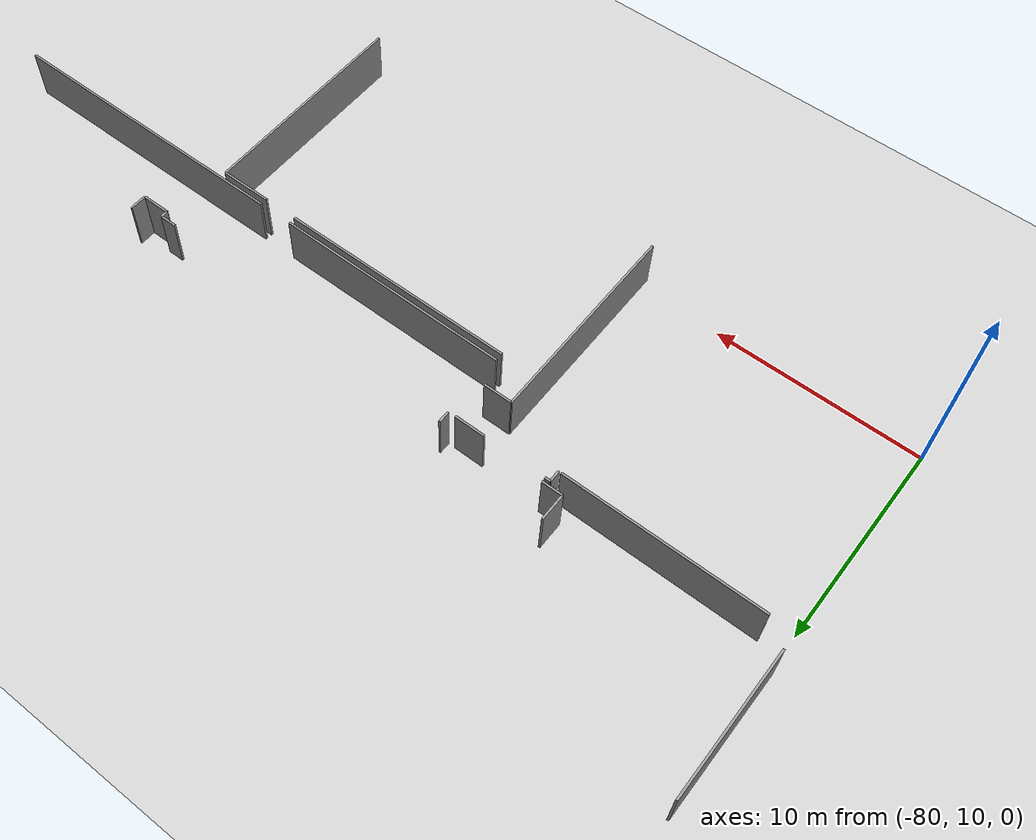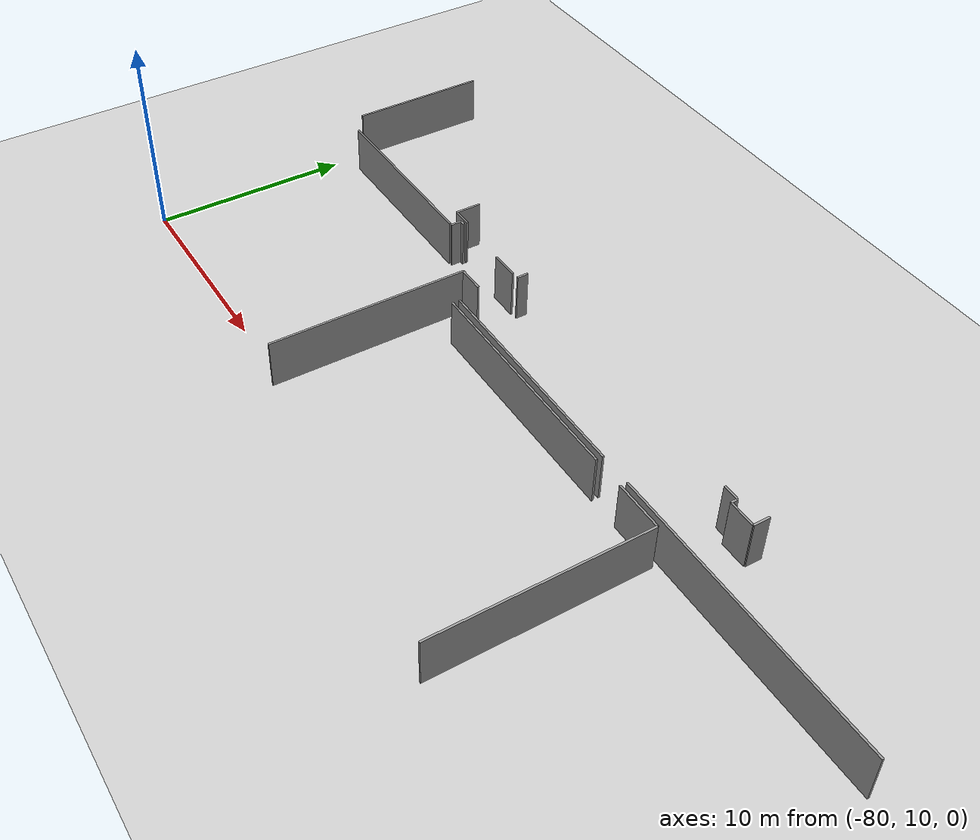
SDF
<sdf version="1.6">
 <world name="default">
  <model name="ground_plane">
   <static>1</static>
   <link name="link">
    <collision name="collision">
     <geometry><plane><normal>0 0 1</normal><size>100 100</size></plane></geometry>
     <surface><friction><ode><mu>100</mu><mu2>50</mu2></ode></friction></surface>
    </collision>
    <visual name="visual">
     <cast_shadows>0</cast_shadows>
     <geometry><plane><normal>0 0 1</normal><size>100 100</size></plane></geometry>
     <material>
      <script><uri>file://media/materials/scripts/gazebo.material</uri><name>Gazebo/Grey</name></script>
     </material>
    </visual>
   </link>
  </model>
  <model name="0510035741_A_40_1_104">
   <static>1</static>
   <link name="Wall_51">
    <collision name="Wall_51_Collision">
     <geometry><box><size>7.02865742534 0.1 2.5</size></box></geometry>
     <pose>3.51432871267 0 1.25 0 0 0</pose>
    </collision>
    <visual name="Wall_51_Visual">
     <pose>3.51432871267 0 1.25 0 0 0</pose>
     <geometry><box><size>7.02865742534 0.1 2.5</size></box></geometry>
     <material>
      <script><uri>file://media/materials/scripts/gazebo.material</uri><name>Gazebo/Grey</name></script>
      <ambient>1 1 1 1</ambient>
     </material>
    </visual>
    <pose>13.8746896451 -27.8723147554 0 0 0 1.57079632679</pose>
   </link>
   <link name="Wall_83">
    <collision name="Wall_83_Collision">
     <geometry><box><size>0.985515713007 0.1 2.5</size></box></geometry>
     <pose>0.492757856503 0 1.25 0 0 0</pose>
    </collision>
    <visual name="Wall_83_Visual">
     <pose>0.492757856503 0 1.25 0 0 0</pose>
     <geometry><box><size>0.985515713007 0.1 2.5</size></box></geometry>
     <material>
      <script><uri>file://media/materials/scripts/gazebo.material</uri><name>Gazebo/Grey</name></script>
      <ambient>1 1 1 1</ambient>
     </material>
    </visual>
    <pose>24.8807157689 -27.926670519 0 0 0 3.14159265359</pose>
   </link>
   <link name="Wall_84">
    <collision name="Wall_84_Collision">
     <geometry><box><size>1.30682431531 0.1 2.5</size></box></geometry>
     <pose>0.653412157657 0 1.25 0 0 0</pose>
    </collision>
    <visual name="Wall_84_Visual">
     <pose>0.653412157657 0 1.25 0 0 0</pose>
     <geometry><box><size>1.30682431531 0.1 2.5</size></box></geometry>
     <material>
      <script><uri>file://media/materials/scripts/gazebo.material</uri><name>Gazebo/Grey</name></script>
      <ambient>1 1 1 1</ambient>
     </material>
    </visual>
    <pose>23.8952000559 -27.926670519 0 0 0 1.57079632679</pose>
   </link>
   <link name="Wall_95">
    <collision name="Wall_95_Collision">
     <geometry><box><size>0.564639543818 0.1 2.5</size></box></geometry>
     <pose>0.282319771909 0 1.25 0 0 0</pose>
    </collision>
    <visual name="Wall_95_Visual">
     <pose>0.282319771909 0 1.25 0 0 0</pose>
     <geometry><box><size>0.564639543818 0.1 2.5</size></box></geometry>
     <material>
      <script><uri>file://media/materials/scripts/gazebo.material</uri><name>Gazebo/Grey</name></script>
      <ambient>1 1 1 1</ambient>
     </material>
    </visual>
    <pose>24.6378928252 -28.6988271601 0 0 0 1.57079632679</pose>
   </link>
   <link name="Wall_96">
    <collision name="Wall_96_Collision">
     <geometry><box><size>0.255014890685 0.1 2.5</size></box></geometry>
     <pose>0.127507445343 0 1.25 0 0 0</pose>
    </collision>
    <visual name="Wall_96_Visual">
     <pose>0.127507445343 0 1.25 0 0 0</pose>
     <geometry><box><size>0.255014890685 0.1 2.5</size></box></geometry>
     <material>
      <script><uri>file://media/materials/scripts/gazebo.material</uri><name>Gazebo/Grey</name></script>
      <ambient>1 1 1 1</ambient>
     </material>
    </visual>
    <pose>24.6378928252 -28.1341876163 0 0 0 0.0</pose>
   </link>
   <link name="Wall_97">
    <collision name="Wall_97_Collision">
     <geometry><box><size>1.46963760708 0.1 2.5</size></box></geometry>
     <pose>0.734818803538 0 1.25 0 0 0</pose>
    </collision>
    <visual name="Wall_97_Visual">
     <pose>0.734818803538 0 1.25 0 0 0</pose>
     <geometry><box><size>1.46963760708 0.1 2.5</size></box></geometry>
     <material>
      <script><uri>file://media/materials/scripts/gazebo.material</uri><name>Gazebo/Grey</name></script>
      <ambient>1 1 1 1</ambient>
     </material>
    </visual>
    <pose>27.8867926925 -28.1341876163 0 0 0 0.0</pose>
   </link>
   <link name="Wall_98">
    <collision name="Wall_98_Collision">
     <geometry><box><size>1.36956204241 0.1 2.5</size></box></geometry>
     <pose>0.684781021203 0 1.25 0 0 0</pose>
    </collision>
    <visual name="Wall_98_Visual">
     <pose>0.684781021203 0 1.25 0 0 0</pose>
     <geometry><box><size>1.36956204241 0.1 2.5</size></box></geometry>
     <material>
      <script><uri>file://media/materials/scripts/gazebo.material</uri><name>Gazebo/Grey</name></script>
      <ambient>1 1 1 1</ambient>
     </material>
    </visual>
    <pose>29.3564302995 -30.0434973108 0 0 0 3.14159265359</pose>
   </link>
   <link name="Wall_99">
    <collision name="Wall_99_Collision">
     <geometry><box><size>10.0789301567 0.1 2.5</size></box></geometry>
     <pose>5.03946507833 0 1.25 0 0 0</pose>
    </collision>
    <visual name="Wall_99_Visual">
     <pose>5.03946507833 0 1.25 0 0 0</pose>
     <geometry><box><size>10.0789301567 0.1 2.5</size></box></geometry>
     <material>
      <script><uri>file://media/materials/scripts/gazebo.material</uri><name>Gazebo/Grey</name></script>
      <ambient>1 1 1 1</ambient>
     </material>
    </visual>
    <pose>27.9868682571 -30.0434973108 0 0 0 -1.57079632679</pose>
   </link>
   <link name="Wall_102">
    <collision name="Wall_102_Collision">
     <geometry><box><size>9.51937059074 0.1 2.5</size></box></geometry>
     <pose>4.75968529537 0 1.25 0 0 0</pose>
    </collision>
    <visual name="Wall_102_Visual">
     <pose>4.75968529537 0 1.25 0 0 0</pose>
     <geometry><box><size>9.51937059074 0.1 2.5</size></box></geometry>
     <material>
      <script><uri>file://media/materials/scripts/gazebo.material</uri><name>Gazebo/Grey</name></script>
      <ambient>1 1 1 1</ambient>
     </material>
    </visual>
    <pose>14.9938087769 -28.6906991955 0 0 0 0.0</pose>
   </link>
   <link name="Wall_109">
    <collision name="Wall_109_Collision">
     <geometry><box><size>0.567941529454 0.1 2.5</size></box></geometry>
     <pose>0.283970764727 0 1.25 0 0 0</pose>
    </collision>
    <visual name="Wall_109_Visual">
     <pose>0.283970764727 0 1.25 0 0 0</pose>
     <geometry><box><size>0.567941529454 0.1 2.5</size></box></geometry>
     <material>
      <script><uri>file://media/materials/scripts/gazebo.material</uri><name>Gazebo/Grey</name></script>
      <ambient>1 1 1 1</ambient>
     </material>
    </visual>
    <pose>29.6889148532 -28.1062477378 0 0 0 1.57079632679</pose>
   </link>
   <link name="Wall_113">
    <collision name="Wall_113_Collision">
     <geometry><box><size>0.801620512951 0.1 2.5</size></box></geometry>
     <pose>0.400810256475 0 1.25 0 0 0</pose>
    </collision>
    <visual name="Wall_113_Visual">
     <pose>0.400810256475 0 1.25 0 0 0</pose>
     <geometry><box><size>0.801620512951 0.1 2.5</size></box></geometry>
     <material>
      <script><uri>file://media/materials/scripts/gazebo.material</uri><name>Gazebo/Grey</name></script>
      <ambient>1 1 1 1</ambient>
     </material>
    </visual>
    <pose>44.9042106667 -28.091261803 0 0 0 0.0</pose>
   </link>
   <link name="Wall_114">
    <collision name="Wall_114_Collision">
     <geometry><box><size>0.329436566951 0.1 2.5</size></box></geometry>
     <pose>0.164718283475 0 1.25 0 0 0</pose>
    </collision>
    <visual name="Wall_114_Visual">
     <pose>0.164718283475 0 1.25 0 0 0</pose>
     <geometry><box><size>0.329436566951 0.1 2.5</size></box></geometry>
     <material>
      <script><uri>file://media/materials/scripts/gazebo.material</uri><name>Gazebo/Grey</name></script>
      <ambient>1 1 1 1</ambient>
     </material>
    </visual>
    <pose>45.7058311796 -28.091261803 0 0 0 -1.57079632679</pose>
   </link>
   <link name="Wall_115">
    <collision name="Wall_115_Collision">
     <geometry><box><size>1.36168807666 0.1 2.5</size></box></geometry>
     <pose>0.680844038328 0 1.25 0 0 0</pose>
    </collision>
    <visual name="Wall_115_Visual">
     <pose>0.680844038328 0 1.25 0 0 0</pose>
     <geometry><box><size>1.36168807666 0.1 2.5</size></box></geometry>
     <material>
      <script><uri>file://media/materials/scripts/gazebo.material</uri><name>Gazebo/Grey</name></script>
      <ambient>1 1 1 1</ambient>
     </material>
    </visual>
    <pose>45.7058311796 -28.42069837 0 0 0 0.0</pose>
   </link>
   <link name="Wall_116">
    <collision name="Wall_116_Collision">
     <geometry><box><size>0.823718416825 0.1 2.5</size></box></geometry>
     <pose>0.411859208412 0 1.25 0 0 0</pose>
    </collision>
    <visual name="Wall_116_Visual">
     <pose>0.411859208412 0 1.25 0 0 0</pose>
     <geometry><box><size>0.823718416825 0.1 2.5</size></box></geometry>
     <material>
      <script><uri>file://media/materials/scripts/gazebo.material</uri><name>Gazebo/Grey</name></script>
      <ambient>1 1 1 1</ambient>
     </material>
    </visual>
    <pose>47.0675192563 -28.42069837 0 0 0 1.57079632679</pose>
   </link>
   <link name="Wall_130">
    <collision name="Wall_130_Collision">
     <geometry><box><size>14.4395831878 0.1 2.5</size></box></geometry>
     <pose>7.21979159391 0 1.25 0 0 0</pose>
    </collision>
    <visual name="Wall_130_Visual">
     <pose>7.21979159391 0 1.25 0 0 0</pose>
     <geometry><box><size>14.4395831878 0.1 2.5</size></box></geometry>
     <material>
      <script><uri>file://media/materials/scripts/gazebo.material</uri><name>Gazebo/Grey</name></script>
      <ambient>1 1 1 1</ambient>
     </material>
    </visual>
    <pose>57.2066471511 -31.314253783 0 0 0 3.14159265359</pose>
   </link>
   <link name="Wall_131">
    <collision name="Wall_131_Collision">
     <geometry><box><size>11.4249217593 0.1 2.5</size></box></geometry>
     <pose>5.71246087967 0 1.25 0 0 0</pose>
    </collision>
    <visual name="Wall_131_Visual">
     <pose>5.71246087967 0 1.25 0 0 0</pose>
     <geometry><box><size>11.4249217593 0.1 2.5</size></box></geometry>
     <material>
      <script><uri>file://media/materials/scripts/gazebo.material</uri><name>Gazebo/Grey</name></script>
      <ambient>1 1 1 1</ambient>
     </material>
    </visual>
    <pose>41.113785155 -31.314253783 0 0 0 3.13859132868</pose>
   </link>
   <link name="Wall_135">
    <collision name="Wall_135_Collision">
     <geometry><box><size>11.4335062642 0.1 2.5</size></box></geometry>
     <pose>5.71675313212 0 1.25 0 0 0</pose>
    </collision>
    <visual name="Wall_135_Visual">
     <pose>5.71675313212 0 1.25 0 0 0</pose>
     <geometry><box><size>11.4335062642 0.1 2.5</size></box></geometry>
     <material>
      <script><uri>file://media/materials/scripts/gazebo.material</uri><name>Gazebo/Grey</name></script>
      <ambient>1 1 1 1</ambient>
     </material>
    </visual>
    <pose>29.6889148532 -31.6482623301 0 0 0 0.0</pose>
   </link>
   <link name="Wall_136">
    <collision name="Wall_136_Collision">
     <geometry><box><size>2.47750522285 0.1 2.5</size></box></geometry>
     <pose>1.23875261143 0 1.25 0 0 0</pose>
    </collision>
    <visual name="Wall_136_Visual">
     <pose>1.23875261143 0 1.25 0 0 0</pose>
     <geometry><box><size>2.47750522285 0.1 2.5</size></box></geometry>
     <material>
      <script><uri>file://media/materials/scripts/gazebo.material</uri><name>Gazebo/Grey</name></script>
      <ambient>1 1 1 1</ambient>
     </material>
    </visual>
    <pose>42.7447120605 -31.6482623301 0 0 0 0.0</pose>
   </link>
   <link name="Wall_137">
    <collision name="Wall_137_Collision">
     <geometry><box><size>10.6473796839 0.1 2.5</size></box></geometry>
     <pose>5.32368984195 0 1.25 0 0 0</pose>
    </collision>
    <visual name="Wall_137_Visual">
     <pose>5.32368984195 0 1.25 0 0 0</pose>
     <geometry><box><size>10.6473796839 0.1 2.5</size></box></geometry>
     <material>
      <script><uri>file://media/materials/scripts/gazebo.material</uri><name>Gazebo/Grey</name></script>
      <ambient>1 1 1 1</ambient>
     </material>
    </visual>
    <pose>45.2222172834 -31.6482623301 0 0 0 -1.57079632679</pose>
   </link>
   <pose>-93.95 49.6727497285 0 0 0 0</pose>
  </model>
 </world>
</sdf>
